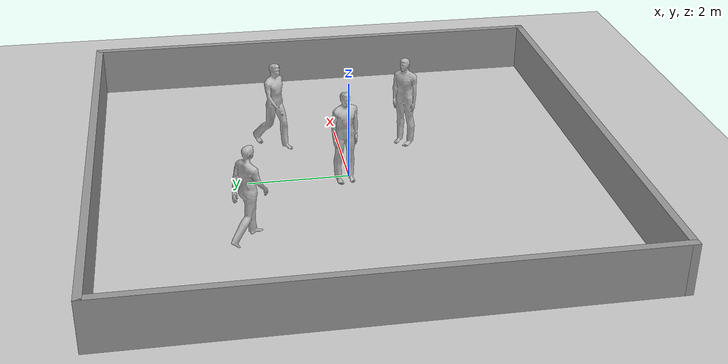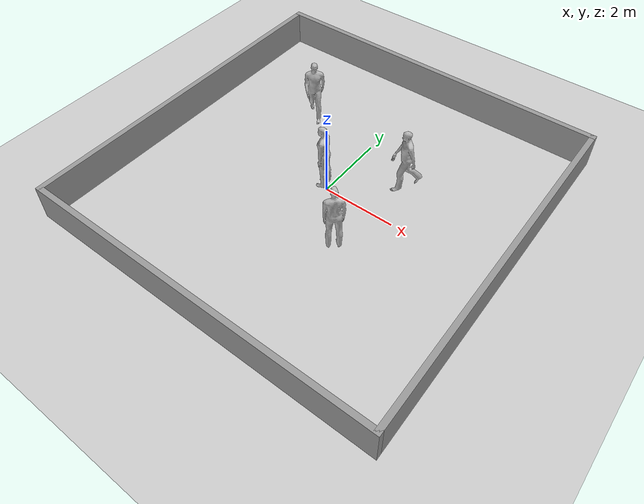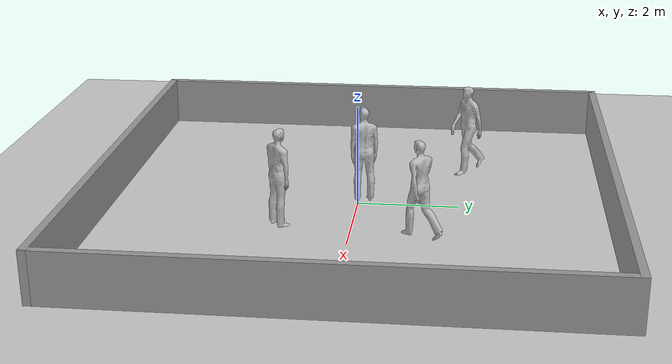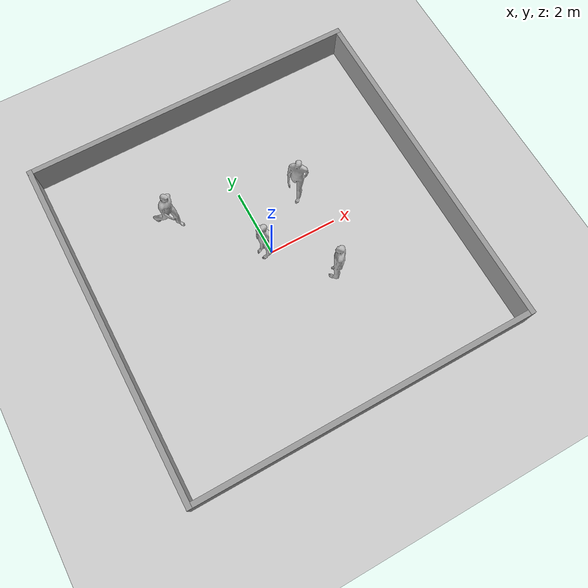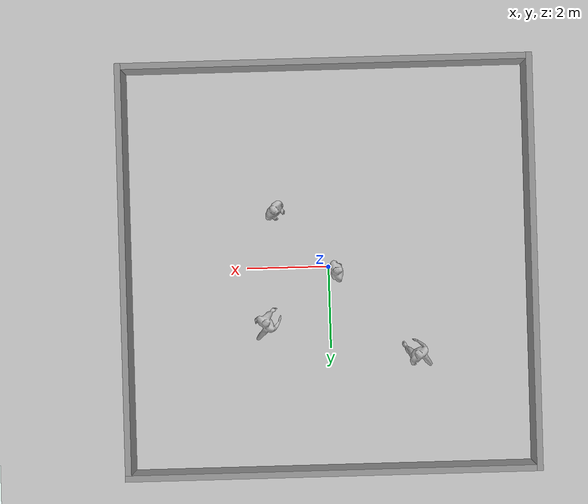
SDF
<sdf version="1.7">
 <world name="default">
  <light name="sun" type="directional">
   <pose>0 0 10 0 -0 0</pose>
   <diffuse>0.8 0.8 0.8 1</diffuse>
   <specular>0.2 0.2 0.2 1</specular>
   <attenuation>
    <range>1000</range>
    <constant>0.9</constant>
    <linear>0.01</linear>
    <quadratic>0.001</quadratic>
   </attenuation>
   <direction>-0.5 0.1 -0.9</direction>
   <spot><inner_angle>0</inner_angle><outer_angle>0</outer_angle><falloff>0</falloff></spot>
  </light>
  <model name="ground_plane">
   <static>1</static>
   <link name="link">
    <collision name="collision">
     <geometry><plane><normal>0 0 1</normal><size>100 100</size></plane></geometry>
     <surface><friction><ode><mu>100</mu><mu2>50</mu2></ode></friction></surface>
    </collision>
    <visual name="visual">
     <cast_shadows>0</cast_shadows>
     <geometry><plane><normal>0 0 1</normal><size>100 100</size></plane></geometry>
     <material>
      <script><uri>file://media/materials/scripts/gazebo.material</uri><name>Gazebo/Grey</name></script>
     </material>
    </visual>
   </link>
  </model>
  <gravity>0 0 -9.8</gravity>
  <magnetic_field>6e-06 2.3e-05 -4.2e-05</magnetic_field>
  <atmosphere type="adiabatic"/>
  <physics type="ode">
   <max_step_size>0.001</max_step_size>
   <real_time_factor>1</real_time_factor>
   <real_time_update_rate>1000</real_time_update_rate>
  </physics>
  <scene><ambient>0.4 0.4 0.4 1</ambient><background>0.7 0.7 0.7 1</background><shadows>1</shadows></scene>
  <spherical_coordinates>
   <surface_model>EARTH_WGS84</surface_model>
   <latitude_deg>0</latitude_deg>
   <longitude_deg>0</longitude_deg>
   <elevation>0</elevation>
   <heading_deg>0</heading_deg>
  </spherical_coordinates>
  <model name="square">
   <pose>0.00069 0.004365 0 0 -0 0</pose>
   <link name="Wall_0">
    <collision name="Wall_0_Collision">
     <geometry><box><size>10.0176 0.15 1</size></box></geometry>
     <pose>0 0 0.5 0 -0 0</pose>
    </collision>
    <visual name="Wall_0_Visual">
     <pose>0 0 0.5 0 -0 0</pose>
     <geometry><box><size>10.0176 0.15 1</size></box></geometry>
     <material>
      <script><uri>file://media/materials/scripts/gazebo.material</uri><name>Gazebo/Grey</name></script>
      <ambient>1 1 1 1</ambient>
     </material>
     <meta><layer>0</layer></meta>
    </visual>
    <pose>-4.925 0 0 0 -0 1.5708</pose>
   </link>
   <link name="Wall_1">
    <collision name="Wall_1_Collision">
     <geometry><box><size>10 0.15 1</size></box></geometry>
     <pose>0 0 0.5 0 -0 0</pose>
    </collision>
    <visual name="Wall_1_Visual">
     <pose>0 0 0.5 0 -0 0</pose>
     <geometry><box><size>10 0.15 1</size></box></geometry>
     <material>
      <script><uri>file://media/materials/scripts/gazebo.material</uri><name>Gazebo/Grey</name></script>
      <ambient>1 1 1 1</ambient>
     </material>
     <meta><layer>0</layer></meta>
    </visual>
    <pose>0 4.934 0 0 -0 0</pose>
   </link>
   <link name="Wall_2">
    <collision name="Wall_2_Collision">
     <geometry><box><size>10.0176 0.15 1</size></box></geometry>
     <pose>0 0 0.5 0 -0 0</pose>
    </collision>
    <visual name="Wall_2_Visual">
     <pose>0 0 0.5 0 -0 0</pose>
     <geometry><box><size>10.0176 0.15 1</size></box></geometry>
     <material>
      <script><uri>file://media/materials/scripts/gazebo.material</uri><name>Gazebo/Grey</name></script>
      <ambient>1 1 1 1</ambient>
     </material>
     <meta><layer>0</layer></meta>
    </visual>
    <pose>4.925 0 0 0 -0 -1.5708</pose>
   </link>
   <link name="Wall_3">
    <collision name="Wall_3_Collision">
     <geometry><box><size>10 0.15 1</size></box></geometry>
     <pose>0 0 0.5 0 -0 0</pose>
    </collision>
    <visual name="Wall_3_Visual">
     <pose>0 0 0.5 0 -0 0</pose>
     <geometry><box><size>10 0.15 1</size></box></geometry>
     <material>
      <script><uri>file://media/materials/scripts/gazebo.material</uri><name>Gazebo/Grey</name></script>
      <ambient>1 1 1 1</ambient>
     </material>
     <meta><layer>0</layer></meta>
    </visual>
    <pose>0 -4.934 0 0 -0 3.14159</pose>
   </link>
   <static>1</static>
  </model>
  <model name="person_standing">
   <link name="link">
    <inertial>
     <pose>0 -0.1 0.95 0 -0 0</pose>
     <mass>80</mass>
     <inertia><ixx>24.88</ixx><ixy>0</ixy><ixz>0</ixz><iyy>25.73</iyy><iyz>0</iyz><izz>2.48</izz></inertia>
    </inertial>
    <collision name="bottom">
     <pose>0 -0.1 0.01 0 -0 0</pose>
     <geometry><box><size>0.5 0.35 0.02</size></box></geometry>
    </collision>
    <collision name="person">
     <pose>0 0 0.02 0.04 -0 0</pose>
     <geometry><mesh><uri>model://person_standing/meshes/standing.dae</uri></mesh></geometry>
    </collision>
    <visual name="visual">
     <pose>0 0 0.02 0.04 -0 0</pose>
     <geometry><mesh><uri>model://person_standing/meshes/standing.dae</uri></mesh></geometry>
    </visual>
   </link>
   <pose>-0.103174 0.12392 -0 0 -1e-06 -1.34835</pose>
  </model>
  <model name="person_standing_0">
   <link name="link">
    <inertial>
     <pose>0 -0.1 0.95 0 -0 0</pose>
     <mass>80</mass>
     <inertia><ixx>24.88</ixx><ixy>0</ixy><ixz>0</ixz><iyy>25.73</iyy><iyz>0</iyz><izz>2.48</izz></inertia>
    </inertial>
    <collision name="bottom">
     <pose>0 -0.1 0.01 0 -0 0</pose>
     <geometry><box><size>0.5 0.35 0.02</size></box></geometry>
    </collision>
    <collision name="person">
     <pose>0 0 0.02 0.04 -0 0</pose>
     <geometry><mesh><uri>model://person_standing/meshes/standing.dae</uri></mesh></geometry>
    </collision>
    <visual name="visual">
     <pose>0 0 0.02 0.04 -0 0</pose>
     <geometry><mesh><uri>model://person_standing/meshes/standing.dae</uri></mesh></geometry>
    </visual>
   </link>
   <pose>1.31162 -1.43277 -0 1e-06 -1e-06 -2.38863</pose>
  </model>
  <model name="person_walking">
   <link name="link">
    <inertial>
     <pose>0 0 0.95 0 -0 0</pose>
     <mass>80</mass>
     <inertia><ixx>27.82</ixx><ixy>0</ixy><ixz>0</ixz><iyy>24.88</iyy><iyz>0</iyz><izz>4.57</izz></inertia>
    </inertial>
    <collision name="bottom">
     <pose>0 0 0.01 0 -0 0</pose>
     <geometry><box><size>0.35 0.75 0.02</size></box></geometry>
    </collision>
    <collision name="person">
     <pose>0 0 -0.02 0 -0 0</pose>
     <geometry><mesh><uri>model://person_walking/meshes/walking.dae</uri></mesh></geometry>
    </collision>
    <visual name="visual">
     <pose>0 0 -0.02 0 -0 0</pose>
     <geometry><mesh><uri>model://person_walking/meshes/walking.dae</uri></mesh></geometry>
    </visual>
   </link>
   <pose>1.53749 1.32331 0 1e-06 -0 -0.797244</pose>
  </model>
  <model name="person_walking_0">
   <link name="link">
    <inertial>
     <pose>0 0 0.95 0 -0 0</pose>
     <mass>80</mass>
     <inertia><ixx>27.82</ixx><ixy>0</ixy><ixz>0</ixz><iyy>24.88</iyy><iyz>0</iyz><izz>4.57</izz></inertia>
    </inertial>
    <collision name="bottom">
     <pose>0 0 0.01 0 -0 0</pose>
     <geometry><box><size>0.35 0.75 0.02</size></box></geometry>
    </collision>
    <collision name="person">
     <pose>0 0 -0.02 0 -0 0</pose>
     <geometry><mesh><uri>model://person_walking/meshes/walking.dae</uri></mesh></geometry>
    </collision>
    <visual name="visual">
     <pose>0 0 -0.02 0 -0 0</pose>
     <geometry><mesh><uri>model://person_walking/meshes/walking.dae</uri></mesh></geometry>
    </visual>
   </link>
   <pose>-2.089 2.15864 -1e-06 2e-06 -0 0.619174</pose>
  </model>
 </world>
</sdf>
